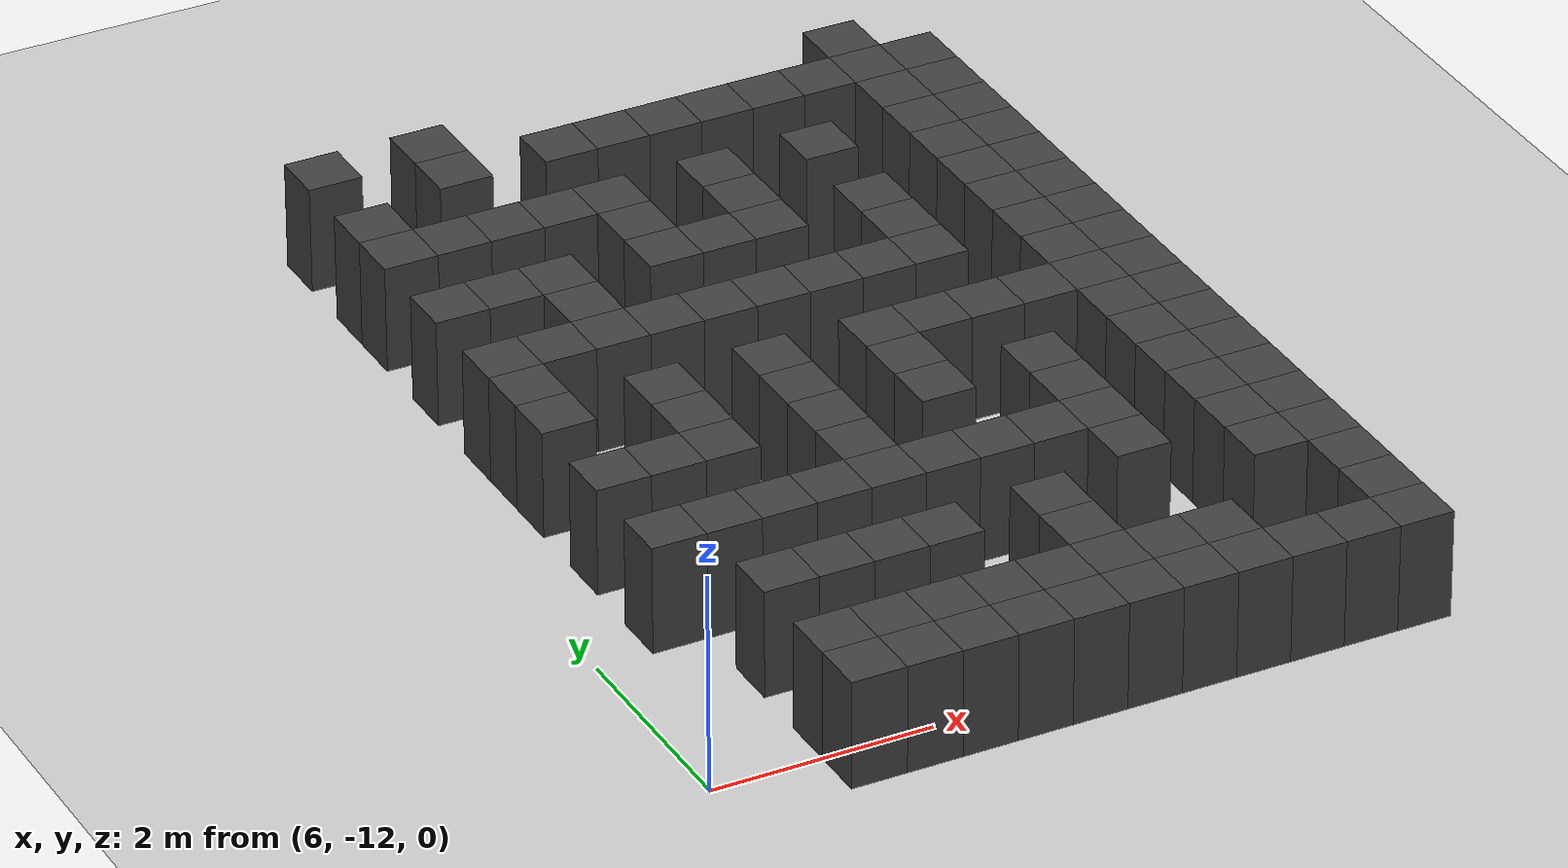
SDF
<sdf version="1.7">
 <world name="map_16783">
  <model name="ground_plane">
   <static>true</static>
   <link name="link">
    <collision name="collision">
     <geometry><plane><normal>0 0 1</normal><size>200 200</size></plane></geometry>
    </collision>
    <visual name="visual">
     <geometry><plane><normal>0 0 1</normal><size>200 200</size></plane></geometry>
     <material><ambient>0.8 0.8 0.8 1</ambient><diffuse>0.8 0.8 0.8 1</diffuse></material>
    </visual>
   </link>
  </model>
  <model name="maze_environment">
   <static>true</static>
   <link name="wall_765">
    <pose>6.750 -3.250 0.500 0 0 0</pose>
    <collision name="col"><geometry><box><size>0.5 0.5 1.0</size></box></geometry></collision>
    <visual name="vis">
     <geometry><box><size>0.5 0.5 1.0</size></box></geometry>
     <material><ambient>0.15 0.15 0.15 1</ambient><diffuse>0.25 0.25 0.25 1</diffuse></material>
    </visual>
   </link>
   <link name="wall_766">
    <pose>7.750 -3.250 0.500 0 0 0</pose>
    <collision name="col"><geometry><box><size>0.5 0.5 1.0</size></box></geometry></collision>
    <visual name="vis">
     <geometry><box><size>0.5 0.5 1.0</size></box></geometry>
     <material><ambient>0.15 0.15 0.15 1</ambient><diffuse>0.25 0.25 0.25 1</diffuse></material>
    </visual>
   </link>
   <link name="wall_767">
    <pose>11.750 -3.250 0.500 0 0 0</pose>
    <collision name="col"><geometry><box><size>0.5 0.5 1.0</size></box></geometry></collision>
    <visual name="vis">
     <geometry><box><size>0.5 0.5 1.0</size></box></geometry>
     <material><ambient>0.15 0.15 0.15 1</ambient><diffuse>0.25 0.25 0.25 1</diffuse></material>
    </visual>
   </link>
   <link name="wall_794">
    <pose>7.750 -3.750 0.500 0 0 0</pose>
    <collision name="col"><geometry><box><size>0.5 0.5 1.0</size></box></geometry></collision>
    <visual name="vis">
     <geometry><box><size>0.5 0.5 1.0</size></box></geometry>
     <material><ambient>0.15 0.15 0.15 1</ambient><diffuse>0.25 0.25 0.25 1</diffuse></material>
    </visual>
   </link>
   <link name="wall_795">
    <pose>8.750 -3.750 0.500 0 0 0</pose>
    <collision name="col"><geometry><box><size>0.5 0.5 1.0</size></box></geometry></collision>
    <visual name="vis">
     <geometry><box><size>0.5 0.5 1.0</size></box></geometry>
     <material><ambient>0.15 0.15 0.15 1</ambient><diffuse>0.25 0.25 0.25 1</diffuse></material>
    </visual>
   </link>
   <link name="wall_796">
    <pose>9.250 -3.750 0.500 0 0 0</pose>
    <collision name="col"><geometry><box><size>0.5 0.5 1.0</size></box></geometry></collision>
    <visual name="vis">
     <geometry><box><size>0.5 0.5 1.0</size></box></geometry>
     <material><ambient>0.15 0.15 0.15 1</ambient><diffuse>0.25 0.25 0.25 1</diffuse></material>
    </visual>
   </link>
   <link name="wall_797">
    <pose>9.750 -3.750 0.500 0 0 0</pose>
    <collision name="col"><geometry><box><size>0.5 0.5 1.0</size></box></geometry></collision>
    <visual name="vis">
     <geometry><box><size>0.5 0.5 1.0</size></box></geometry>
     <material><ambient>0.15 0.15 0.15 1</ambient><diffuse>0.25 0.25 0.25 1</diffuse></material>
    </visual>
   </link>
   <link name="wall_798">
    <pose>10.250 -3.750 0.500 0 0 0</pose>
    <collision name="col"><geometry><box><size>0.5 0.5 1.0</size></box></geometry></collision>
    <visual name="vis">
     <geometry><box><size>0.5 0.5 1.0</size></box></geometry>
     <material><ambient>0.15 0.15 0.15 1</ambient><diffuse>0.25 0.25 0.25 1</diffuse></material>
    </visual>
   </link>
   <link name="wall_799">
    <pose>10.750 -3.750 0.500 0 0 0</pose>
    <collision name="col"><geometry><box><size>0.5 0.5 1.0</size></box></geometry></collision>
    <visual name="vis">
     <geometry><box><size>0.5 0.5 1.0</size></box></geometry>
     <material><ambient>0.15 0.15 0.15 1</ambient><diffuse>0.25 0.25 0.25 1</diffuse></material>
    </visual>
   </link>
   <link name="wall_800">
    <pose>11.250 -3.750 0.500 0 0 0</pose>
    <collision name="col"><geometry><box><size>0.5 0.5 1.0</size></box></geometry></collision>
    <visual name="vis">
     <geometry><box><size>0.5 0.5 1.0</size></box></geometry>
     <material><ambient>0.15 0.15 0.15 1</ambient><diffuse>0.25 0.25 0.25 1</diffuse></material>
    </visual>
   </link>
   <link name="wall_801">
    <pose>11.750 -3.750 0.500 0 0 0</pose>
    <collision name="col"><geometry><box><size>0.5 0.5 1.0</size></box></geometry></collision>
    <visual name="vis">
     <geometry><box><size>0.5 0.5 1.0</size></box></geometry>
     <material><ambient>0.15 0.15 0.15 1</ambient><diffuse>0.25 0.25 0.25 1</diffuse></material>
    </visual>
   </link>
   <link name="wall_802">
    <pose>12.250 -3.750 0.500 0 0 0</pose>
    <collision name="col"><geometry><box><size>0.5 0.5 1.0</size></box></geometry></collision>
    <visual name="vis">
     <geometry><box><size>0.5 0.5 1.0</size></box></geometry>
     <material><ambient>0.15 0.15 0.15 1</ambient><diffuse>0.25 0.25 0.25 1</diffuse></material>
    </visual>
   </link>
   <link name="wall_812">
    <pose>6.750 -4.250 0.500 0 0 0</pose>
    <collision name="col"><geometry><box><size>0.5 0.5 1.0</size></box></geometry></collision>
    <visual name="vis">
     <geometry><box><size>0.5 0.5 1.0</size></box></geometry>
     <material><ambient>0.15 0.15 0.15 1</ambient><diffuse>0.25 0.25 0.25 1</diffuse></material>
    </visual>
   </link>
   <link name="wall_813">
    <pose>11.750 -4.250 0.500 0 0 0</pose>
    <collision name="col"><geometry><box><size>0.5 0.5 1.0</size></box></geometry></collision>
    <visual name="vis">
     <geometry><box><size>0.5 0.5 1.0</size></box></geometry>
     <material><ambient>0.15 0.15 0.15 1</ambient><diffuse>0.25 0.25 0.25 1</diffuse></material>
    </visual>
   </link>
   <link name="wall_814">
    <pose>12.250 -4.250 0.500 0 0 0</pose>
    <collision name="col"><geometry><box><size>0.5 0.5 1.0</size></box></geometry></collision>
    <visual name="vis">
     <geometry><box><size>0.5 0.5 1.0</size></box></geometry>
     <material><ambient>0.15 0.15 0.15 1</ambient><diffuse>0.25 0.25 0.25 1</diffuse></material>
    </visual>
   </link>
   <link name="wall_842">
    <pose>6.750 -4.750 0.500 0 0 0</pose>
    <collision name="col"><geometry><box><size>0.5 0.5 1.0</size></box></geometry></collision>
    <visual name="vis">
     <geometry><box><size>0.5 0.5 1.0</size></box></geometry>
     <material><ambient>0.15 0.15 0.15 1</ambient><diffuse>0.25 0.25 0.25 1</diffuse></material>
    </visual>
   </link>
   <link name="wall_843">
    <pose>7.250 -4.750 0.500 0 0 0</pose>
    <collision name="col"><geometry><box><size>0.5 0.5 1.0</size></box></geometry></collision>
    <visual name="vis">
     <geometry><box><size>0.5 0.5 1.0</size></box></geometry>
     <material><ambient>0.15 0.15 0.15 1</ambient><diffuse>0.25 0.25 0.25 1</diffuse></material>
    </visual>
   </link>
   <link name="wall_844">
    <pose>7.750 -4.750 0.500 0 0 0</pose>
    <collision name="col"><geometry><box><size>0.5 0.5 1.0</size></box></geometry></collision>
    <visual name="vis">
     <geometry><box><size>0.5 0.5 1.0</size></box></geometry>
     <material><ambient>0.15 0.15 0.15 1</ambient><diffuse>0.25 0.25 0.25 1</diffuse></material>
    </visual>
   </link>
   <link name="wall_845">
    <pose>8.250 -4.750 0.500 0 0 0</pose>
    <collision name="col"><geometry><box><size>0.5 0.5 1.0</size></box></geometry></collision>
    <visual name="vis">
     <geometry><box><size>0.5 0.5 1.0</size></box></geometry>
     <material><ambient>0.15 0.15 0.15 1</ambient><diffuse>0.25 0.25 0.25 1</diffuse></material>
    </visual>
   </link>
   <link name="wall_846">
    <pose>8.750 -4.750 0.500 0 0 0</pose>
    <collision name="col"><geometry><box><size>0.5 0.5 1.0</size></box></geometry></collision>
    <visual name="vis">
     <geometry><box><size>0.5 0.5 1.0</size></box></geometry>
     <material><ambient>0.15 0.15 0.15 1</ambient><diffuse>0.25 0.25 0.25 1</diffuse></material>
    </visual>
   </link>
   <link name="wall_847">
    <pose>9.750 -4.750 0.500 0 0 0</pose>
    <collision name="col"><geometry><box><size>0.5 0.5 1.0</size></box></geometry></collision>
    <visual name="vis">
     <geometry><box><size>0.5 0.5 1.0</size></box></geometry>
     <material><ambient>0.15 0.15 0.15 1</ambient><diffuse>0.25 0.25 0.25 1</diffuse></material>
    </visual>
   </link>
   <link name="wall_848">
    <pose>10.750 -4.750 0.500 0 0 0</pose>
    <collision name="col"><geometry><box><size>0.5 0.5 1.0</size></box></geometry></collision>
    <visual name="vis">
     <geometry><box><size>0.5 0.5 1.0</size></box></geometry>
     <material><ambient>0.15 0.15 0.15 1</ambient><diffuse>0.25 0.25 0.25 1</diffuse></material>
    </visual>
   </link>
   <link name="wall_849">
    <pose>11.750 -4.750 0.500 0 0 0</pose>
    <collision name="col"><geometry><box><size>0.5 0.5 1.0</size></box></geometry></collision>
    <visual name="vis">
     <geometry><box><size>0.5 0.5 1.0</size></box></geometry>
     <material><ambient>0.15 0.15 0.15 1</ambient><diffuse>0.25 0.25 0.25 1</diffuse></material>
    </visual>
   </link>
   <link name="wall_850">
    <pose>12.250 -4.750 0.500 0 0 0</pose>
    <collision name="col"><geometry><box><size>0.5 0.5 1.0</size></box></geometry></collision>
    <visual name="vis">
     <geometry><box><size>0.5 0.5 1.0</size></box></geometry>
     <material><ambient>0.15 0.15 0.15 1</ambient><diffuse>0.25 0.25 0.25 1</diffuse></material>
    </visual>
   </link>
   <link name="wall_861">
    <pose>8.750 -5.250 0.500 0 0 0</pose>
    <collision name="col"><geometry><box><size>0.5 0.5 1.0</size></box></geometry></collision>
    <visual name="vis">
     <geometry><box><size>0.5 0.5 1.0</size></box></geometry>
     <material><ambient>0.15 0.15 0.15 1</ambient><diffuse>0.25 0.25 0.25 1</diffuse></material>
    </visual>
   </link>
   <link name="wall_862">
    <pose>9.750 -5.250 0.500 0 0 0</pose>
    <collision name="col"><geometry><box><size>0.5 0.5 1.0</size></box></geometry></collision>
    <visual name="vis">
     <geometry><box><size>0.5 0.5 1.0</size></box></geometry>
     <material><ambient>0.15 0.15 0.15 1</ambient><diffuse>0.25 0.25 0.25 1</diffuse></material>
    </visual>
   </link>
   <link name="wall_863">
    <pose>11.750 -5.250 0.500 0 0 0</pose>
    <collision name="col"><geometry><box><size>0.5 0.5 1.0</size></box></geometry></collision>
    <visual name="vis">
     <geometry><box><size>0.5 0.5 1.0</size></box></geometry>
     <material><ambient>0.15 0.15 0.15 1</ambient><diffuse>0.25 0.25 0.25 1</diffuse></material>
    </visual>
   </link>
   <link name="wall_864">
    <pose>12.250 -5.250 0.500 0 0 0</pose>
    <collision name="col"><geometry><box><size>0.5 0.5 1.0</size></box></geometry></collision>
    <visual name="vis">
     <geometry><box><size>0.5 0.5 1.0</size></box></geometry>
     <material><ambient>0.15 0.15 0.15 1</ambient><diffuse>0.25 0.25 0.25 1</diffuse></material>
    </visual>
   </link>
   <link name="wall_889">
    <pose>6.750 -5.750 0.500 0 0 0</pose>
    <collision name="col"><geometry><box><size>0.5 0.5 1.0</size></box></geometry></collision>
    <visual name="vis">
     <geometry><box><size>0.5 0.5 1.0</size></box></geometry>
     <material><ambient>0.15 0.15 0.15 1</ambient><diffuse>0.25 0.25 0.25 1</diffuse></material>
    </visual>
   </link>
   <link name="wall_890">
    <pose>7.250 -5.750 0.500 0 0 0</pose>
    <collision name="col"><geometry><box><size>0.5 0.5 1.0</size></box></geometry></collision>
    <visual name="vis">
     <geometry><box><size>0.5 0.5 1.0</size></box></geometry>
     <material><ambient>0.15 0.15 0.15 1</ambient><diffuse>0.25 0.25 0.25 1</diffuse></material>
    </visual>
   </link>
   <link name="wall_891">
    <pose>7.750 -5.750 0.500 0 0 0</pose>
    <collision name="col"><geometry><box><size>0.5 0.5 1.0</size></box></geometry></collision>
    <visual name="vis">
     <geometry><box><size>0.5 0.5 1.0</size></box></geometry>
     <material><ambient>0.15 0.15 0.15 1</ambient><diffuse>0.25 0.25 0.25 1</diffuse></material>
    </visual>
   </link>
   <link name="wall_892">
    <pose>8.750 -5.750 0.500 0 0 0</pose>
    <collision name="col"><geometry><box><size>0.5 0.5 1.0</size></box></geometry></collision>
    <visual name="vis">
     <geometry><box><size>0.5 0.5 1.0</size></box></geometry>
     <material><ambient>0.15 0.15 0.15 1</ambient><diffuse>0.25 0.25 0.25 1</diffuse></material>
    </visual>
   </link>
   <link name="wall_893">
    <pose>9.250 -5.750 0.500 0 0 0</pose>
    <collision name="col"><geometry><box><size>0.5 0.5 1.0</size></box></geometry></collision>
    <visual name="vis">
     <geometry><box><size>0.5 0.5 1.0</size></box></geometry>
     <material><ambient>0.15 0.15 0.15 1</ambient><diffuse>0.25 0.25 0.25 1</diffuse></material>
    </visual>
   </link>
   <link name="wall_894">
    <pose>9.750 -5.750 0.500 0 0 0</pose>
    <collision name="col"><geometry><box><size>0.5 0.5 1.0</size></box></geometry></collision>
    <visual name="vis">
     <geometry><box><size>0.5 0.5 1.0</size></box></geometry>
     <material><ambient>0.15 0.15 0.15 1</ambient><diffuse>0.25 0.25 0.25 1</diffuse></material>
    </visual>
   </link>
   <link name="wall_895">
    <pose>10.750 -5.750 0.500 0 0 0</pose>
    <collision name="col"><geometry><box><size>0.5 0.5 1.0</size></box></geometry></collision>
    <visual name="vis">
     <geometry><box><size>0.5 0.5 1.0</size></box></geometry>
     <material><ambient>0.15 0.15 0.15 1</ambient><diffuse>0.25 0.25 0.25 1</diffuse></material>
    </visual>
   </link>
   <link name="wall_896">
    <pose>11.750 -5.750 0.500 0 0 0</pose>
    <collision name="col"><geometry><box><size>0.5 0.5 1.0</size></box></geometry></collision>
    <visual name="vis">
     <geometry><box><size>0.5 0.5 1.0</size></box></geometry>
     <material><ambient>0.15 0.15 0.15 1</ambient><diffuse>0.25 0.25 0.25 1</diffuse></material>
    </visual>
   </link>
   <link name="wall_897">
    <pose>12.250 -5.750 0.500 0 0 0</pose>
    <collision name="col"><geometry><box><size>0.5 0.5 1.0</size></box></geometry></collision>
    <visual name="vis">
     <geometry><box><size>0.5 0.5 1.0</size></box></geometry>
     <material><ambient>0.15 0.15 0.15 1</ambient><diffuse>0.25 0.25 0.25 1</diffuse></material>
    </visual>
   </link>
   <link name="wall_909">
    <pose>7.750 -6.250 0.500 0 0 0</pose>
    <collision name="col"><geometry><box><size>0.5 0.5 1.0</size></box></geometry></collision>
    <visual name="vis">
     <geometry><box><size>0.5 0.5 1.0</size></box></geometry>
     <material><ambient>0.15 0.15 0.15 1</ambient><diffuse>0.25 0.25 0.25 1</diffuse></material>
    </visual>
   </link>
   <link name="wall_910">
    <pose>10.750 -6.250 0.500 0 0 0</pose>
    <collision name="col"><geometry><box><size>0.5 0.5 1.0</size></box></geometry></collision>
    <visual name="vis">
     <geometry><box><size>0.5 0.5 1.0</size></box></geometry>
     <material><ambient>0.15 0.15 0.15 1</ambient><diffuse>0.25 0.25 0.25 1</diffuse></material>
    </visual>
   </link>
   <link name="wall_911">
    <pose>11.750 -6.250 0.500 0 0 0</pose>
    <collision name="col"><geometry><box><size>0.5 0.5 1.0</size></box></geometry></collision>
    <visual name="vis">
     <geometry><box><size>0.5 0.5 1.0</size></box></geometry>
     <material><ambient>0.15 0.15 0.15 1</ambient><diffuse>0.25 0.25 0.25 1</diffuse></material>
    </visual>
   </link>
   <link name="wall_912">
    <pose>12.250 -6.250 0.500 0 0 0</pose>
    <collision name="col"><geometry><box><size>0.5 0.5 1.0</size></box></geometry></collision>
    <visual name="vis">
     <geometry><box><size>0.5 0.5 1.0</size></box></geometry>
     <material><ambient>0.15 0.15 0.15 1</ambient><diffuse>0.25 0.25 0.25 1</diffuse></material>
    </visual>
   </link>
   <link name="wall_936">
    <pose>6.750 -6.750 0.500 0 0 0</pose>
    <collision name="col"><geometry><box><size>0.5 0.5 1.0</size></box></geometry></collision>
    <visual name="vis">
     <geometry><box><size>0.5 0.5 1.0</size></box></geometry>
     <material><ambient>0.15 0.15 0.15 1</ambient><diffuse>0.25 0.25 0.25 1</diffuse></material>
    </visual>
   </link>
   <link name="wall_937">
    <pose>7.250 -6.750 0.500 0 0 0</pose>
    <collision name="col"><geometry><box><size>0.5 0.5 1.0</size></box></geometry></collision>
    <visual name="vis">
     <geometry><box><size>0.5 0.5 1.0</size></box></geometry>
     <material><ambient>0.15 0.15 0.15 1</ambient><diffuse>0.25 0.25 0.25 1</diffuse></material>
    </visual>
   </link>
   <link name="wall_938">
    <pose>7.750 -6.750 0.500 0 0 0</pose>
    <collision name="col"><geometry><box><size>0.5 0.5 1.0</size></box></geometry></collision>
    <visual name="vis">
     <geometry><box><size>0.5 0.5 1.0</size></box></geometry>
     <material><ambient>0.15 0.15 0.15 1</ambient><diffuse>0.25 0.25 0.25 1</diffuse></material>
    </visual>
   </link>
   <link name="wall_939">
    <pose>8.250 -6.750 0.500 0 0 0</pose>
    <collision name="col"><geometry><box><size>0.5 0.5 1.0</size></box></geometry></collision>
    <visual name="vis">
     <geometry><box><size>0.5 0.5 1.0</size></box></geometry>
     <material><ambient>0.15 0.15 0.15 1</ambient><diffuse>0.25 0.25 0.25 1</diffuse></material>
    </visual>
   </link>
   <link name="wall_940">
    <pose>8.750 -6.750 0.500 0 0 0</pose>
    <collision name="col"><geometry><box><size>0.5 0.5 1.0</size></box></geometry></collision>
    <visual name="vis">
     <geometry><box><size>0.5 0.5 1.0</size></box></geometry>
     <material><ambient>0.15 0.15 0.15 1</ambient><diffuse>0.25 0.25 0.25 1</diffuse></material>
    </visual>
   </link>
   <link name="wall_941">
    <pose>9.250 -6.750 0.500 0 0 0</pose>
    <collision name="col"><geometry><box><size>0.5 0.5 1.0</size></box></geometry></collision>
    <visual name="vis">
     <geometry><box><size>0.5 0.5 1.0</size></box></geometry>
     <material><ambient>0.15 0.15 0.15 1</ambient><diffuse>0.25 0.25 0.25 1</diffuse></material>
    </visual>
   </link>
   <link name="wall_942">
    <pose>9.750 -6.750 0.500 0 0 0</pose>
    <collision name="col"><geometry><box><size>0.5 0.5 1.0</size></box></geometry></collision>
    <visual name="vis">
     <geometry><box><size>0.5 0.5 1.0</size></box></geometry>
     <material><ambient>0.15 0.15 0.15 1</ambient><diffuse>0.25 0.25 0.25 1</diffuse></material>
    </visual>
   </link>
   <link name="wall_943">
    <pose>10.250 -6.750 0.500 0 0 0</pose>
    <collision name="col"><geometry><box><size>0.5 0.5 1.0</size></box></geometry></collision>
    <visual name="vis">
     <geometry><box><size>0.5 0.5 1.0</size></box></geometry>
     <material><ambient>0.15 0.15 0.15 1</ambient><diffuse>0.25 0.25 0.25 1</diffuse></material>
    </visual>
   </link>
   <link name="wall_944">
    <pose>10.750 -6.750 0.500 0 0 0</pose>
    <collision name="col"><geometry><box><size>0.5 0.5 1.0</size></box></geometry></collision>
    <visual name="vis">
     <geometry><box><size>0.5 0.5 1.0</size></box></geometry>
     <material><ambient>0.15 0.15 0.15 1</ambient><diffuse>0.25 0.25 0.25 1</diffuse></material>
    </visual>
   </link>
   <link name="wall_945">
    <pose>11.750 -6.750 0.500 0 0 0</pose>
    <collision name="col"><geometry><box><size>0.5 0.5 1.0</size></box></geometry></collision>
    <visual name="vis">
     <geometry><box><size>0.5 0.5 1.0</size></box></geometry>
     <material><ambient>0.15 0.15 0.15 1</ambient><diffuse>0.25 0.25 0.25 1</diffuse></material>
    </visual>
   </link>
   <link name="wall_946">
    <pose>12.250 -6.750 0.500 0 0 0</pose>
    <collision name="col"><geometry><box><size>0.5 0.5 1.0</size></box></geometry></collision>
    <visual name="vis">
     <geometry><box><size>0.5 0.5 1.0</size></box></geometry>
     <material><ambient>0.15 0.15 0.15 1</ambient><diffuse>0.25 0.25 0.25 1</diffuse></material>
    </visual>
   </link>
   <link name="wall_959">
    <pose>6.750 -7.250 0.500 0 0 0</pose>
    <collision name="col"><geometry><box><size>0.5 0.5 1.0</size></box></geometry></collision>
    <visual name="vis">
     <geometry><box><size>0.5 0.5 1.0</size></box></geometry>
     <material><ambient>0.15 0.15 0.15 1</ambient><diffuse>0.25 0.25 0.25 1</diffuse></material>
    </visual>
   </link>
   <link name="wall_960">
    <pose>11.750 -7.250 0.500 0 0 0</pose>
    <collision name="col"><geometry><box><size>0.5 0.5 1.0</size></box></geometry></collision>
    <visual name="vis">
     <geometry><box><size>0.5 0.5 1.0</size></box></geometry>
     <material><ambient>0.15 0.15 0.15 1</ambient><diffuse>0.25 0.25 0.25 1</diffuse></material>
    </visual>
   </link>
   <link name="wall_961">
    <pose>12.250 -7.250 0.500 0 0 0</pose>
    <collision name="col"><geometry><box><size>0.5 0.5 1.0</size></box></geometry></collision>
    <visual name="vis">
     <geometry><box><size>0.5 0.5 1.0</size></box></geometry>
     <material><ambient>0.15 0.15 0.15 1</ambient><diffuse>0.25 0.25 0.25 1</diffuse></material>
    </visual>
   </link>
   <link name="wall_984">
    <pose>6.750 -7.750 0.500 0 0 0</pose>
    <collision name="col"><geometry><box><size>0.5 0.5 1.0</size></box></geometry></collision>
    <visual name="vis">
     <geometry><box><size>0.5 0.5 1.0</size></box></geometry>
     <material><ambient>0.15 0.15 0.15 1</ambient><diffuse>0.25 0.25 0.25 1</diffuse></material>
    </visual>
   </link>
   <link name="wall_985">
    <pose>7.750 -7.750 0.500 0 0 0</pose>
    <collision name="col"><geometry><box><size>0.5 0.5 1.0</size></box></geometry></collision>
    <visual name="vis">
     <geometry><box><size>0.5 0.5 1.0</size></box></geometry>
     <material><ambient>0.15 0.15 0.15 1</ambient><diffuse>0.25 0.25 0.25 1</diffuse></material>
    </visual>
   </link>
   <link name="wall_986">
    <pose>8.750 -7.750 0.500 0 0 0</pose>
    <collision name="col"><geometry><box><size>0.5 0.5 1.0</size></box></geometry></collision>
    <visual name="vis">
     <geometry><box><size>0.5 0.5 1.0</size></box></geometry>
     <material><ambient>0.15 0.15 0.15 1</ambient><diffuse>0.25 0.25 0.25 1</diffuse></material>
    </visual>
   </link>
   <link name="wall_987">
    <pose>9.750 -7.750 0.500 0 0 0</pose>
    <collision name="col"><geometry><box><size>0.5 0.5 1.0</size></box></geometry></collision>
    <visual name="vis">
     <geometry><box><size>0.5 0.5 1.0</size></box></geometry>
     <material><ambient>0.15 0.15 0.15 1</ambient><diffuse>0.25 0.25 0.25 1</diffuse></material>
    </visual>
   </link>
   <link name="wall_988">
    <pose>10.250 -7.750 0.500 0 0 0</pose>
    <collision name="col"><geometry><box><size>0.5 0.5 1.0</size></box></geometry></collision>
    <visual name="vis">
     <geometry><box><size>0.5 0.5 1.0</size></box></geometry>
     <material><ambient>0.15 0.15 0.15 1</ambient><diffuse>0.25 0.25 0.25 1</diffuse></material>
    </visual>
   </link>
   <link name="wall_989">
    <pose>10.750 -7.750 0.500 0 0 0</pose>
    <collision name="col"><geometry><box><size>0.5 0.5 1.0</size></box></geometry></collision>
    <visual name="vis">
     <geometry><box><size>0.5 0.5 1.0</size></box></geometry>
     <material><ambient>0.15 0.15 0.15 1</ambient><diffuse>0.25 0.25 0.25 1</diffuse></material>
    </visual>
   </link>
   <link name="wall_990">
    <pose>11.250 -7.750 0.500 0 0 0</pose>
    <collision name="col"><geometry><box><size>0.5 0.5 1.0</size></box></geometry></collision>
    <visual name="vis">
     <geometry><box><size>0.5 0.5 1.0</size></box></geometry>
     <material><ambient>0.15 0.15 0.15 1</ambient><diffuse>0.25 0.25 0.25 1</diffuse></material>
    </visual>
   </link>
   <link name="wall_991">
    <pose>11.750 -7.750 0.500 0 0 0</pose>
    <collision name="col"><geometry><box><size>0.5 0.5 1.0</size></box></geometry></collision>
    <visual name="vis">
     <geometry><box><size>0.5 0.5 1.0</size></box></geometry>
     <material><ambient>0.15 0.15 0.15 1</ambient><diffuse>0.25 0.25 0.25 1</diffuse></material>
    </visual>
   </link>
   <link name="wall_992">
    <pose>12.250 -7.750 0.500 0 0 0</pose>
    <collision name="col"><geometry><box><size>0.5 0.5 1.0</size></box></geometry></collision>
    <visual name="vis">
     <geometry><box><size>0.5 0.5 1.0</size></box></geometry>
     <material><ambient>0.15 0.15 0.15 1</ambient><diffuse>0.25 0.25 0.25 1</diffuse></material>
    </visual>
   </link>
   <link name="wall_1003">
    <pose>7.750 -8.250 0.500 0 0 0</pose>
    <collision name="col"><geometry><box><size>0.5 0.5 1.0</size></box></geometry></collision>
    <visual name="vis">
     <geometry><box><size>0.5 0.5 1.0</size></box></geometry>
     <material><ambient>0.15 0.15 0.15 1</ambient><diffuse>0.25 0.25 0.25 1</diffuse></material>
    </visual>
   </link>
   <link name="wall_1004">
    <pose>8.750 -8.250 0.500 0 0 0</pose>
    <collision name="col"><geometry><box><size>0.5 0.5 1.0</size></box></geometry></collision>
    <visual name="vis">
     <geometry><box><size>0.5 0.5 1.0</size></box></geometry>
     <material><ambient>0.15 0.15 0.15 1</ambient><diffuse>0.25 0.25 0.25 1</diffuse></material>
    </visual>
   </link>
   <link name="wall_1005">
    <pose>9.750 -8.250 0.500 0 0 0</pose>
    <collision name="col"><geometry><box><size>0.5 0.5 1.0</size></box></geometry></collision>
    <visual name="vis">
     <geometry><box><size>0.5 0.5 1.0</size></box></geometry>
     <material><ambient>0.15 0.15 0.15 1</ambient><diffuse>0.25 0.25 0.25 1</diffuse></material>
    </visual>
   </link>
   <link name="wall_1006">
    <pose>11.750 -8.250 0.500 0 0 0</pose>
    <collision name="col"><geometry><box><size>0.5 0.5 1.0</size></box></geometry></collision>
    <visual name="vis">
     <geometry><box><size>0.5 0.5 1.0</size></box></geometry>
     <material><ambient>0.15 0.15 0.15 1</ambient><diffuse>0.25 0.25 0.25 1</diffuse></material>
    </visual>
   </link>
   <link name="wall_1007">
    <pose>12.250 -8.250 0.500 0 0 0</pose>
    <collision name="col"><geometry><box><size>0.5 0.5 1.0</size></box></geometry></collision>
    <visual name="vis">
     <geometry><box><size>0.5 0.5 1.0</size></box></geometry>
     <material><ambient>0.15 0.15 0.15 1</ambient><diffuse>0.25 0.25 0.25 1</diffuse></material>
    </visual>
   </link>
   <link name="wall_1039">
    <pose>6.750 -8.750 0.500 0 0 0</pose>
    <collision name="col"><geometry><box><size>0.5 0.5 1.0</size></box></geometry></collision>
    <visual name="vis">
     <geometry><box><size>0.5 0.5 1.0</size></box></geometry>
     <material><ambient>0.15 0.15 0.15 1</ambient><diffuse>0.25 0.25 0.25 1</diffuse></material>
    </visual>
   </link>
   <link name="wall_1040">
    <pose>7.250 -8.750 0.500 0 0 0</pose>
    <collision name="col"><geometry><box><size>0.5 0.5 1.0</size></box></geometry></collision>
    <visual name="vis">
     <geometry><box><size>0.5 0.5 1.0</size></box></geometry>
     <material><ambient>0.15 0.15 0.15 1</ambient><diffuse>0.25 0.25 0.25 1</diffuse></material>
    </visual>
   </link>
   <link name="wall_1041">
    <pose>7.750 -8.750 0.500 0 0 0</pose>
    <collision name="col"><geometry><box><size>0.5 0.5 1.0</size></box></geometry></collision>
    <visual name="vis">
     <geometry><box><size>0.5 0.5 1.0</size></box></geometry>
     <material><ambient>0.15 0.15 0.15 1</ambient><diffuse>0.25 0.25 0.25 1</diffuse></material>
    </visual>
   </link>
   <link name="wall_1042">
    <pose>8.750 -8.750 0.500 0 0 0</pose>
    <collision name="col"><geometry><box><size>0.5 0.5 1.0</size></box></geometry></collision>
    <visual name="vis">
     <geometry><box><size>0.5 0.5 1.0</size></box></geometry>
     <material><ambient>0.15 0.15 0.15 1</ambient><diffuse>0.25 0.25 0.25 1</diffuse></material>
    </visual>
   </link>
   <link name="wall_1043">
    <pose>9.750 -8.750 0.500 0 0 0</pose>
    <collision name="col"><geometry><box><size>0.5 0.5 1.0</size></box></geometry></collision>
    <visual name="vis">
     <geometry><box><size>0.5 0.5 1.0</size></box></geometry>
     <material><ambient>0.15 0.15 0.15 1</ambient><diffuse>0.25 0.25 0.25 1</diffuse></material>
    </visual>
   </link>
   <link name="wall_1044">
    <pose>10.750 -8.750 0.500 0 0 0</pose>
    <collision name="col"><geometry><box><size>0.5 0.5 1.0</size></box></geometry></collision>
    <visual name="vis">
     <geometry><box><size>0.5 0.5 1.0</size></box></geometry>
     <material><ambient>0.15 0.15 0.15 1</ambient><diffuse>0.25 0.25 0.25 1</diffuse></material>
    </visual>
   </link>
   <link name="wall_1045">
    <pose>11.750 -8.750 0.500 0 0 0</pose>
    <collision name="col"><geometry><box><size>0.5 0.5 1.0</size></box></geometry></collision>
    <visual name="vis">
     <geometry><box><size>0.5 0.5 1.0</size></box></geometry>
     <material><ambient>0.15 0.15 0.15 1</ambient><diffuse>0.25 0.25 0.25 1</diffuse></material>
    </visual>
   </link>
   <link name="wall_1046">
    <pose>12.250 -8.750 0.500 0 0 0</pose>
    <collision name="col"><geometry><box><size>0.5 0.5 1.0</size></box></geometry></collision>
    <visual name="vis">
     <geometry><box><size>0.5 0.5 1.0</size></box></geometry>
     <material><ambient>0.15 0.15 0.15 1</ambient><diffuse>0.25 0.25 0.25 1</diffuse></material>
    </visual>
   </link>
   <link name="wall_1055">
    <pose>8.750 -9.250 0.500 0 0 0</pose>
    <collision name="col"><geometry><box><size>0.5 0.5 1.0</size></box></geometry></collision>
    <visual name="vis">
     <geometry><box><size>0.5 0.5 1.0</size></box></geometry>
     <material><ambient>0.15 0.15 0.15 1</ambient><diffuse>0.25 0.25 0.25 1</diffuse></material>
    </visual>
   </link>
   <link name="wall_1056">
    <pose>10.750 -9.250 0.500 0 0 0</pose>
    <collision name="col"><geometry><box><size>0.5 0.5 1.0</size></box></geometry></collision>
    <visual name="vis">
     <geometry><box><size>0.5 0.5 1.0</size></box></geometry>
     <material><ambient>0.15 0.15 0.15 1</ambient><diffuse>0.25 0.25 0.25 1</diffuse></material>
    </visual>
   </link>
   <link name="wall_1057">
    <pose>11.750 -9.250 0.500 0 0 0</pose>
    <collision name="col"><geometry><box><size>0.5 0.5 1.0</size></box></geometry></collision>
    <visual name="vis">
     <geometry><box><size>0.5 0.5 1.0</size></box></geometry>
     <material><ambient>0.15 0.15 0.15 1</ambient><diffuse>0.25 0.25 0.25 1</diffuse></material>
    </visual>
   </link>
   <link name="wall_1058">
    <pose>12.250 -9.250 0.500 0 0 0</pose>
    <collision name="col"><geometry><box><size>0.5 0.5 1.0</size></box></geometry></collision>
    <visual name="vis">
     <geometry><box><size>0.5 0.5 1.0</size></box></geometry>
     <material><ambient>0.15 0.15 0.15 1</ambient><diffuse>0.25 0.25 0.25 1</diffuse></material>
    </visual>
   </link>
   <link name="wall_1085">
    <pose>6.750 -9.750 0.500 0 0 0</pose>
    <collision name="col"><geometry><box><size>0.5 0.5 1.0</size></box></geometry></collision>
    <visual name="vis">
     <geometry><box><size>0.5 0.5 1.0</size></box></geometry>
     <material><ambient>0.15 0.15 0.15 1</ambient><diffuse>0.25 0.25 0.25 1</diffuse></material>
    </visual>
   </link>
   <link name="wall_1086">
    <pose>7.250 -9.750 0.500 0 0 0</pose>
    <collision name="col"><geometry><box><size>0.5 0.5 1.0</size></box></geometry></collision>
    <visual name="vis">
     <geometry><box><size>0.5 0.5 1.0</size></box></geometry>
     <material><ambient>0.15 0.15 0.15 1</ambient><diffuse>0.25 0.25 0.25 1</diffuse></material>
    </visual>
   </link>
   <link name="wall_1087">
    <pose>7.750 -9.750 0.500 0 0 0</pose>
    <collision name="col"><geometry><box><size>0.5 0.5 1.0</size></box></geometry></collision>
    <visual name="vis">
     <geometry><box><size>0.5 0.5 1.0</size></box></geometry>
     <material><ambient>0.15 0.15 0.15 1</ambient><diffuse>0.25 0.25 0.25 1</diffuse></material>
    </visual>
   </link>
   <link name="wall_1088">
    <pose>8.250 -9.750 0.500 0 0 0</pose>
    <collision name="col"><geometry><box><size>0.5 0.5 1.0</size></box></geometry></collision>
    <visual name="vis">
     <geometry><box><size>0.5 0.5 1.0</size></box></geometry>
     <material><ambient>0.15 0.15 0.15 1</ambient><diffuse>0.25 0.25 0.25 1</diffuse></material>
    </visual>
   </link>
   <link name="wall_1089">
    <pose>8.750 -9.750 0.500 0 0 0</pose>
    <collision name="col"><geometry><box><size>0.5 0.5 1.0</size></box></geometry></collision>
    <visual name="vis">
     <geometry><box><size>0.5 0.5 1.0</size></box></geometry>
     <material><ambient>0.15 0.15 0.15 1</ambient><diffuse>0.25 0.25 0.25 1</diffuse></material>
    </visual>
   </link>
   <link name="wall_1090">
    <pose>9.250 -9.750 0.500 0 0 0</pose>
    <collision name="col"><geometry><box><size>0.5 0.5 1.0</size></box></geometry></collision>
    <visual name="vis">
     <geometry><box><size>0.5 0.5 1.0</size></box></geometry>
     <material><ambient>0.15 0.15 0.15 1</ambient><diffuse>0.25 0.25 0.25 1</diffuse></material>
    </visual>
   </link>
   <link name="wall_1091">
    <pose>9.750 -9.750 0.500 0 0 0</pose>
    <collision name="col"><geometry><box><size>0.5 0.5 1.0</size></box></geometry></collision>
    <visual name="vis">
     <geometry><box><size>0.5 0.5 1.0</size></box></geometry>
     <material><ambient>0.15 0.15 0.15 1</ambient><diffuse>0.25 0.25 0.25 1</diffuse></material>
    </visual>
   </link>
   <link name="wall_1092">
    <pose>10.250 -9.750 0.500 0 0 0</pose>
    <collision name="col"><geometry><box><size>0.5 0.5 1.0</size></box></geometry></collision>
    <visual name="vis">
     <geometry><box><size>0.5 0.5 1.0</size></box></geometry>
     <material><ambient>0.15 0.15 0.15 1</ambient><diffuse>0.25 0.25 0.25 1</diffuse></material>
    </visual>
   </link>
   <link name="wall_1093">
    <pose>10.750 -9.750 0.500 0 0 0</pose>
    <collision name="col"><geometry><box><size>0.5 0.5 1.0</size></box></geometry></collision>
    <visual name="vis">
     <geometry><box><size>0.5 0.5 1.0</size></box></geometry>
     <material><ambient>0.15 0.15 0.15 1</ambient><diffuse>0.25 0.25 0.25 1</diffuse></material>
    </visual>
   </link>
   <link name="wall_1094">
    <pose>11.750 -9.750 0.500 0 0 0</pose>
    <collision name="col"><geometry><box><size>0.5 0.5 1.0</size></box></geometry></collision>
    <visual name="vis">
     <geometry><box><size>0.5 0.5 1.0</size></box></geometry>
     <material><ambient>0.15 0.15 0.15 1</ambient><diffuse>0.25 0.25 0.25 1</diffuse></material>
    </visual>
   </link>
   <link name="wall_1095">
    <pose>12.250 -9.750 0.500 0 0 0</pose>
    <collision name="col"><geometry><box><size>0.5 0.5 1.0</size></box></geometry></collision>
    <visual name="vis">
     <geometry><box><size>0.5 0.5 1.0</size></box></geometry>
     <material><ambient>0.15 0.15 0.15 1</ambient><diffuse>0.25 0.25 0.25 1</diffuse></material>
    </visual>
   </link>
   <link name="wall_1107">
    <pose>10.750 -10.250 0.500 0 0 0</pose>
    <collision name="col"><geometry><box><size>0.5 0.5 1.0</size></box></geometry></collision>
    <visual name="vis">
     <geometry><box><size>0.5 0.5 1.0</size></box></geometry>
     <material><ambient>0.15 0.15 0.15 1</ambient><diffuse>0.25 0.25 0.25 1</diffuse></material>
    </visual>
   </link>
   <link name="wall_1108">
    <pose>11.750 -10.250 0.500 0 0 0</pose>
    <collision name="col"><geometry><box><size>0.5 0.5 1.0</size></box></geometry></collision>
    <visual name="vis">
     <geometry><box><size>0.5 0.5 1.0</size></box></geometry>
     <material><ambient>0.15 0.15 0.15 1</ambient><diffuse>0.25 0.25 0.25 1</diffuse></material>
    </visual>
   </link>
   <link name="wall_1109">
    <pose>12.250 -10.250 0.500 0 0 0</pose>
    <collision name="col"><geometry><box><size>0.5 0.5 1.0</size></box></geometry></collision>
    <visual name="vis">
     <geometry><box><size>0.5 0.5 1.0</size></box></geometry>
     <material><ambient>0.15 0.15 0.15 1</ambient><diffuse>0.25 0.25 0.25 1</diffuse></material>
    </visual>
   </link>
   <link name="wall_1137">
    <pose>7.250 -10.750 0.500 0 0 0</pose>
    <collision name="col"><geometry><box><size>0.5 0.5 1.0</size></box></geometry></collision>
    <visual name="vis">
     <geometry><box><size>0.5 0.5 1.0</size></box></geometry>
     <material><ambient>0.15 0.15 0.15 1</ambient><diffuse>0.25 0.25 0.25 1</diffuse></material>
    </visual>
   </link>
   <link name="wall_1138">
    <pose>7.750 -10.750 0.500 0 0 0</pose>
    <collision name="col"><geometry><box><size>0.5 0.5 1.0</size></box></geometry></collision>
    <visual name="vis">
     <geometry><box><size>0.5 0.5 1.0</size></box></geometry>
     <material><ambient>0.15 0.15 0.15 1</ambient><diffuse>0.25 0.25 0.25 1</diffuse></material>
    </visual>
   </link>
   <link name="wall_1139">
    <pose>8.250 -10.750 0.500 0 0 0</pose>
    <collision name="col"><geometry><box><size>0.5 0.5 1.0</size></box></geometry></collision>
    <visual name="vis">
     <geometry><box><size>0.5 0.5 1.0</size></box></geometry>
     <material><ambient>0.15 0.15 0.15 1</ambient><diffuse>0.25 0.25 0.25 1</diffuse></material>
    </visual>
   </link>
   <link name="wall_1140">
    <pose>8.750 -10.750 0.500 0 0 0</pose>
    <collision name="col"><geometry><box><size>0.5 0.5 1.0</size></box></geometry></collision>
    <visual name="vis">
     <geometry><box><size>0.5 0.5 1.0</size></box></geometry>
     <material><ambient>0.15 0.15 0.15 1</ambient><diffuse>0.25 0.25 0.25 1</diffuse></material>
    </visual>
   </link>
   <link name="wall_1141">
    <pose>9.750 -10.750 0.500 0 0 0</pose>
    <collision name="col"><geometry><box><size>0.5 0.5 1.0</size></box></geometry></collision>
    <visual name="vis">
     <geometry><box><size>0.5 0.5 1.0</size></box></geometry>
     <material><ambient>0.15 0.15 0.15 1</ambient><diffuse>0.25 0.25 0.25 1</diffuse></material>
    </visual>
   </link>
   <link name="wall_1142">
    <pose>11.750 -10.750 0.500 0 0 0</pose>
    <collision name="col"><geometry><box><size>0.5 0.5 1.0</size></box></geometry></collision>
    <visual name="vis">
     <geometry><box><size>0.5 0.5 1.0</size></box></geometry>
     <material><ambient>0.15 0.15 0.15 1</ambient><diffuse>0.25 0.25 0.25 1</diffuse></material>
    </visual>
   </link>
   <link name="wall_1143">
    <pose>12.250 -10.750 0.500 0 0 0</pose>
    <collision name="col"><geometry><box><size>0.5 0.5 1.0</size></box></geometry></collision>
    <visual name="vis">
     <geometry><box><size>0.5 0.5 1.0</size></box></geometry>
     <material><ambient>0.15 0.15 0.15 1</ambient><diffuse>0.25 0.25 0.25 1</diffuse></material>
    </visual>
   </link>
   <link name="wall_1148">
    <pose>9.750 -11.250 0.500 0 0 0</pose>
    <collision name="col"><geometry><box><size>0.5 0.5 1.0</size></box></geometry></collision>
    <visual name="vis">
     <geometry><box><size>0.5 0.5 1.0</size></box></geometry>
     <material><ambient>0.15 0.15 0.15 1</ambient><diffuse>0.25 0.25 0.25 1</diffuse></material>
    </visual>
   </link>
   <link name="wall_1149">
    <pose>12.250 -11.250 0.500 0 0 0</pose>
    <collision name="col"><geometry><box><size>0.5 0.5 1.0</size></box></geometry></collision>
    <visual name="vis">
     <geometry><box><size>0.5 0.5 1.0</size></box></geometry>
     <material><ambient>0.15 0.15 0.15 1</ambient><diffuse>0.25 0.25 0.25 1</diffuse></material>
    </visual>
   </link>
   <link name="wall_1189">
    <pose>7.250 -11.750 0.500 0 0 0</pose>
    <collision name="col"><geometry><box><size>0.5 0.5 1.0</size></box></geometry></collision>
    <visual name="vis">
     <geometry><box><size>0.5 0.5 1.0</size></box></geometry>
     <material><ambient>0.15 0.15 0.15 1</ambient><diffuse>0.25 0.25 0.25 1</diffuse></material>
    </visual>
   </link>
   <link name="wall_1190">
    <pose>7.750 -11.750 0.500 0 0 0</pose>
    <collision name="col"><geometry><box><size>0.5 0.5 1.0</size></box></geometry></collision>
    <visual name="vis">
     <geometry><box><size>0.5 0.5 1.0</size></box></geometry>
     <material><ambient>0.15 0.15 0.15 1</ambient><diffuse>0.25 0.25 0.25 1</diffuse></material>
    </visual>
   </link>
   <link name="wall_1191">
    <pose>8.250 -11.750 0.500 0 0 0</pose>
    <collision name="col"><geometry><box><size>0.5 0.5 1.0</size></box></geometry></collision>
    <visual name="vis">
     <geometry><box><size>0.5 0.5 1.0</size></box></geometry>
     <material><ambient>0.15 0.15 0.15 1</ambient><diffuse>0.25 0.25 0.25 1</diffuse></material>
    </visual>
   </link>
   <link name="wall_1192">
    <pose>8.750 -11.750 0.500 0 0 0</pose>
    <collision name="col"><geometry><box><size>0.5 0.5 1.0</size></box></geometry></collision>
    <visual name="vis">
     <geometry><box><size>0.5 0.5 1.0</size></box></geometry>
     <material><ambient>0.15 0.15 0.15 1</ambient><diffuse>0.25 0.25 0.25 1</diffuse></material>
    </visual>
   </link>
   <link name="wall_1193">
    <pose>9.250 -11.750 0.500 0 0 0</pose>
    <collision name="col"><geometry><box><size>0.5 0.5 1.0</size></box></geometry></collision>
    <visual name="vis">
     <geometry><box><size>0.5 0.5 1.0</size></box></geometry>
     <material><ambient>0.15 0.15 0.15 1</ambient><diffuse>0.25 0.25 0.25 1</diffuse></material>
    </visual>
   </link>
   <link name="wall_1194">
    <pose>9.750 -11.750 0.500 0 0 0</pose>
    <collision name="col"><geometry><box><size>0.5 0.5 1.0</size></box></geometry></collision>
    <visual name="vis">
     <geometry><box><size>0.5 0.5 1.0</size></box></geometry>
     <material><ambient>0.15 0.15 0.15 1</ambient><diffuse>0.25 0.25 0.25 1</diffuse></material>
    </visual>
   </link>
   <link name="wall_1195">
    <pose>10.250 -11.750 0.500 0 0 0</pose>
    <collision name="col"><geometry><box><size>0.5 0.5 1.0</size></box></geometry></collision>
    <visual name="vis">
     <geometry><box><size>0.5 0.5 1.0</size></box></geometry>
     <material><ambient>0.15 0.15 0.15 1</ambient><diffuse>0.25 0.25 0.25 1</diffuse></material>
    </visual>
   </link>
   <link name="wall_1196">
    <pose>10.750 -11.750 0.500 0 0 0</pose>
    <collision name="col"><geometry><box><size>0.5 0.5 1.0</size></box></geometry></collision>
    <visual name="vis">
     <geometry><box><size>0.5 0.5 1.0</size></box></geometry>
     <material><ambient>0.15 0.15 0.15 1</ambient><diffuse>0.25 0.25 0.25 1</diffuse></material>
    </visual>
   </link>
   <link name="wall_1197">
    <pose>12.250 -11.750 0.500 0 0 0</pose>
    <collision name="col"><geometry><box><size>0.5 0.5 1.0</size></box></geometry></collision>
    <visual name="vis">
     <geometry><box><size>0.5 0.5 1.0</size></box></geometry>
     <material><ambient>0.15 0.15 0.15 1</ambient><diffuse>0.25 0.25 0.25 1</diffuse></material>
    </visual>
   </link>
   <link name="wall_1237">
    <pose>7.250 -12.250 0.500 0 0 0</pose>
    <collision name="col"><geometry><box><size>0.5 0.5 1.0</size></box></geometry></collision>
    <visual name="vis">
     <geometry><box><size>0.5 0.5 1.0</size></box></geometry>
     <material><ambient>0.15 0.15 0.15 1</ambient><diffuse>0.25 0.25 0.25 1</diffuse></material>
    </visual>
   </link>
   <link name="wall_1238">
    <pose>7.750 -12.250 0.500 0 0 0</pose>
    <collision name="col"><geometry><box><size>0.5 0.5 1.0</size></box></geometry></collision>
    <visual name="vis">
     <geometry><box><size>0.5 0.5 1.0</size></box></geometry>
     <material><ambient>0.15 0.15 0.15 1</ambient><diffuse>0.25 0.25 0.25 1</diffuse></material>
    </visual>
   </link>
   <link name="wall_1239">
    <pose>8.250 -12.250 0.500 0 0 0</pose>
    <collision name="col"><geometry><box><size>0.5 0.5 1.0</size></box></geometry></collision>
    <visual name="vis">
     <geometry><box><size>0.5 0.5 1.0</size></box></geometry>
     <material><ambient>0.15 0.15 0.15 1</ambient><diffuse>0.25 0.25 0.25 1</diffuse></material>
    </visual>
   </link>
   <link name="wall_1240">
    <pose>8.750 -12.250 0.500 0 0 0</pose>
    <collision name="col"><geometry><box><size>0.5 0.5 1.0</size></box></geometry></collision>
    <visual name="vis">
     <geometry><box><size>0.5 0.5 1.0</size></box></geometry>
     <material><ambient>0.15 0.15 0.15 1</ambient><diffuse>0.25 0.25 0.25 1</diffuse></material>
    </visual>
   </link>
   <link name="wall_1241">
    <pose>9.250 -12.250 0.500 0 0 0</pose>
    <collision name="col"><geometry><box><size>0.5 0.5 1.0</size></box></geometry></collision>
    <visual name="vis">
     <geometry><box><size>0.5 0.5 1.0</size></box></geometry>
     <material><ambient>0.15 0.15 0.15 1</ambient><diffuse>0.25 0.25 0.25 1</diffuse></material>
    </visual>
   </link>
   <link name="wall_1242">
    <pose>9.750 -12.250 0.500 0 0 0</pose>
    <collision name="col"><geometry><box><size>0.5 0.5 1.0</size></box></geometry></collision>
    <visual name="vis">
     <geometry><box><size>0.5 0.5 1.0</size></box></geometry>
     <material><ambient>0.15 0.15 0.15 1</ambient><diffuse>0.25 0.25 0.25 1</diffuse></material>
    </visual>
   </link>
   <link name="wall_1243">
    <pose>10.250 -12.250 0.500 0 0 0</pose>
    <collision name="col"><geometry><box><size>0.5 0.5 1.0</size></box></geometry></collision>
    <visual name="vis">
     <geometry><box><size>0.5 0.5 1.0</size></box></geometry>
     <material><ambient>0.15 0.15 0.15 1</ambient><diffuse>0.25 0.25 0.25 1</diffuse></material>
    </visual>
   </link>
   <link name="wall_1244">
    <pose>10.750 -12.250 0.500 0 0 0</pose>
    <collision name="col"><geometry><box><size>0.5 0.5 1.0</size></box></geometry></collision>
    <visual name="vis">
     <geometry><box><size>0.5 0.5 1.0</size></box></geometry>
     <material><ambient>0.15 0.15 0.15 1</ambient><diffuse>0.25 0.25 0.25 1</diffuse></material>
    </visual>
   </link>
   <link name="wall_1245">
    <pose>11.250 -12.250 0.500 0 0 0</pose>
    <collision name="col"><geometry><box><size>0.5 0.5 1.0</size></box></geometry></collision>
    <visual name="vis">
     <geometry><box><size>0.5 0.5 1.0</size></box></geometry>
     <material><ambient>0.15 0.15 0.15 1</ambient><diffuse>0.25 0.25 0.25 1</diffuse></material>
    </visual>
   </link>
   <link name="wall_1246">
    <pose>11.750 -12.250 0.500 0 0 0</pose>
    <collision name="col"><geometry><box><size>0.5 0.5 1.0</size></box></geometry></collision>
    <visual name="vis">
     <geometry><box><size>0.5 0.5 1.0</size></box></geometry>
     <material><ambient>0.15 0.15 0.15 1</ambient><diffuse>0.25 0.25 0.25 1</diffuse></material>
    </visual>
   </link>
   <link name="wall_1247">
    <pose>12.250 -12.250 0.500 0 0 0</pose>
    <collision name="col"><geometry><box><size>0.5 0.5 1.0</size></box></geometry></collision>
    <visual name="vis">
     <geometry><box><size>0.5 0.5 1.0</size></box></geometry>
     <material><ambient>0.15 0.15 0.15 1</ambient><diffuse>0.25 0.25 0.25 1</diffuse></material>
    </visual>
   </link>
   <link name="goal_zone">
    <pose>11.750 -11.750 0.005 0 0 0</pose>
    <visual name="vis">
     <geometry><box><size>0.45 0.45 0.01</size></box></geometry>
     <material>
      <ambient>1.0 0.0 0.0 1</ambient>
      <diffuse>1.0 0.0 0.0 1</diffuse>
      <emissive>0.60 0.00 0.00 1</emissive>
     </material>
    </visual>
   </link>
  </model>
 </world>
</sdf>
